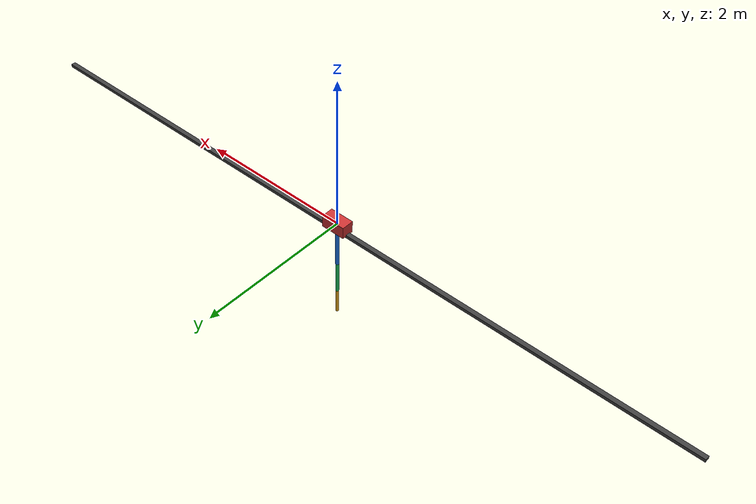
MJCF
<mujoco model="tripendulum_8">
  <compiler angle="radian" coordinate="local"/>
  <option timestep="0.005" gravity="0 0 -9.81" integrator="implicitfast"/>

  <default>
    <joint damping="0.02" frictionloss="0.001" armature="0.001"/>
    <geom rgba="0.2 0.4 0.8 1" contype="0" conaffinity="0"/>
  </default>

  <worldbody>
    <light name="top" pos="0 0 4"/>
    <camera name="fixed" pos="0 -10 2.8" xyaxes="1 0 0 0 0.28 0.96"/>
    <geom name="track" type="box" pos="0 0 -0.08" size="4.8 0.03 0.02" rgba="0.25 0.25 0.25 1" contype="0" conaffinity="0"/>

    <body name="cart" pos="0 0 0">
      <joint name="cart_slider" type="slide" axis="1 0 0" limited="false" damping="0.1"/>
      <geom name="cart_geom" type="box" size="0.16 0.08 0.08" rgba="0.8 0.2 0.2 1" contype="0" conaffinity="0"/>

      <body name="link1" pos="0 0 -0.08">
        <joint name="hinge1" type="hinge" axis="0 1 0" limited="false" damping="0.01"/>
        <geom name="link1_geom" type="capsule" fromto="0 0 0 0 0 -0.55" size="0.025" rgba="0.1 0.45 0.9 1" contype="0" conaffinity="0"/>
        <body name="link2" pos="0 0 -0.55">
          <joint name="hinge2" type="hinge" axis="0 1 0" limited="false" damping="0.01"/>
          <geom name="link2_geom" type="capsule" fromto="0 0 0 0 0 -0.45" size="0.022" rgba="0.1 0.75 0.35 1" contype="0" conaffinity="0"/>
          <body name="link3" pos="0 0 -0.45">
            <joint name="hinge3" type="hinge" axis="0 1 0" limited="false" damping="0.01"/>
            <geom name="link3_geom" type="capsule" fromto="0 0 0 0 0 -0.35" size="0.02" rgba="0.9 0.65 0.1 1" contype="0" conaffinity="0"/>
          </body>
        </body>
      </body>
    </body>
  </worldbody>

  <actuator>
    <motor name="cart_force" joint="cart_slider" gear="1" ctrllimited="true" ctrlrange="-40 40"/>
  </actuator>
</mujoco>
